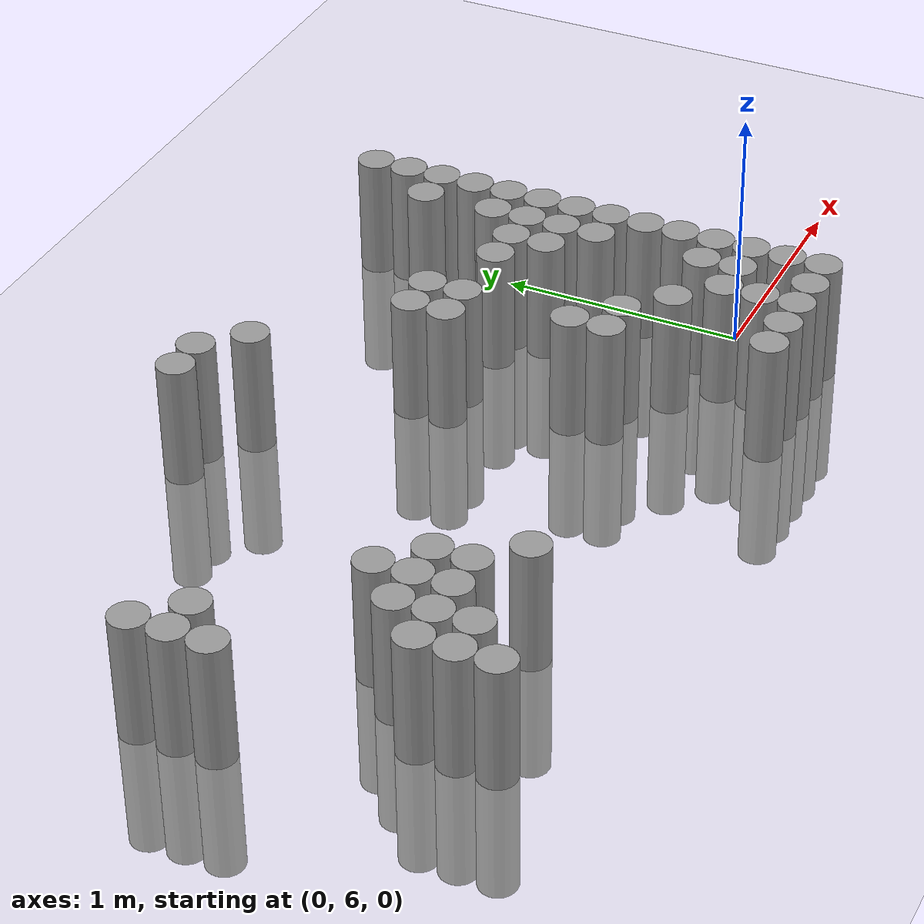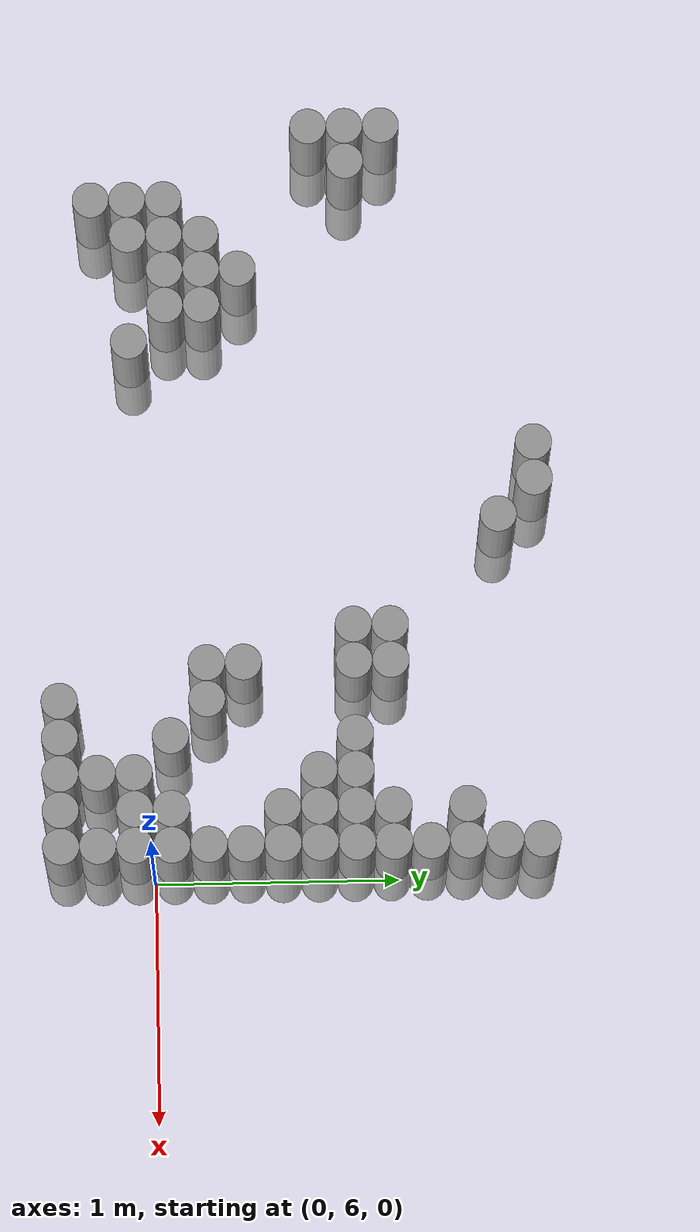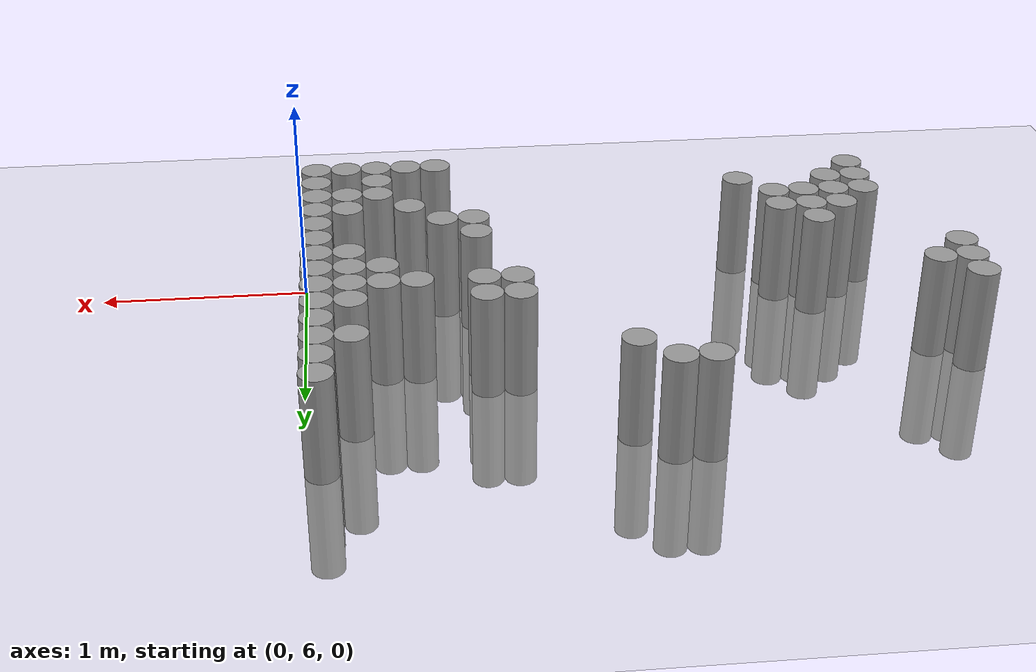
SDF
<sdf version="1.6">
 <world name="default">
  <model name="ground_plane">
   <static>1</static>
   <static>1</static>
   <link name="link">
    <collision name="collision">
     <geometry><plane><normal>0 0 1</normal><size>100 100</size></plane></geometry>
     <surface><friction><ode><mu>100</mu><mu2>50</mu2></ode></friction></surface>
    </collision>
    <visual name="visual">
     <cast_shadows>0</cast_shadows>
     <geometry><plane><normal>0 0 1</normal><size>100 100</size></plane></geometry>
     <material>
      <script><uri>file://media/materials/scripts/gazebo.material</uri><name>Gazebo/Grey</name></script>
     </material>
    </visual>
   </link>
  </model>
  <model name="unit_cylinder_166">
   <static>1</static>
   <pose>-3.075000 6.675000 0.000000 0.000000 0.000000 0.000000</pose>
   <link name="link">
    <inertial>
     <mass>1</mass>
     <inertia><ixx>0.145833</ixx><ixy>0</ixy><ixz>0</ixz><iyy>0.145833</iyy><iyz>0</iyz><izz>0.125</izz></inertia>
    </inertial>
    <collision name="collision">
     <geometry><cylinder><radius>0.075000</radius><length>1</length></cylinder></geometry>
    </collision>
    <visual name="visual">
     <geometry><cylinder><radius>0.075000</radius><length>1</length></cylinder></geometry>
     <material>
      <script><name>Gazebo/Grey</name><uri>file://media/materials/scripts/gazebo.material</uri></script>
     </material>
    </visual>
   </link>
  </model>
  <model name="unit_cylinder_167">
   <static>1</static>
   <pose>-3.075000 6.825000 0.000000 0.000000 0.000000 0.000000</pose>
   <link name="link">
    <inertial>
     <mass>1</mass>
     <inertia><ixx>0.145833</ixx><ixy>0</ixy><ixz>0</ixz><iyy>0.145833</iyy><iyz>0</iyz><izz>0.125</izz></inertia>
    </inertial>
    <collision name="collision">
     <geometry><cylinder><radius>0.075000</radius><length>1</length></cylinder></geometry>
    </collision>
    <visual name="visual">
     <geometry><cylinder><radius>0.075000</radius><length>1</length></cylinder></geometry>
     <material>
      <script><name>Gazebo/Grey</name><uri>file://media/materials/scripts/gazebo.material</uri></script>
     </material>
    </visual>
   </link>
  </model>
  <model name="unit_cylinder_168">
   <static>1</static>
   <pose>-3.075000 6.975000 0.000000 0.000000 0.000000 0.000000</pose>
   <link name="link">
    <inertial>
     <mass>1</mass>
     <inertia><ixx>0.145833</ixx><ixy>0</ixy><ixz>0</ixz><iyy>0.145833</iyy><iyz>0</iyz><izz>0.125</izz></inertia>
    </inertial>
    <collision name="collision">
     <geometry><cylinder><radius>0.075000</radius><length>1</length></cylinder></geometry>
    </collision>
    <visual name="visual">
     <geometry><cylinder><radius>0.075000</radius><length>1</length></cylinder></geometry>
     <material>
      <script><name>Gazebo/Grey</name><uri>file://media/materials/scripts/gazebo.material</uri></script>
     </material>
    </visual>
   </link>
  </model>
  <model name="unit_cylinder_169">
   <static>1</static>
   <pose>-2.925000 6.825000 0.000000 0.000000 0.000000 0.000000</pose>
   <link name="link">
    <inertial>
     <mass>1</mass>
     <inertia><ixx>0.145833</ixx><ixy>0</ixy><ixz>0</ixz><iyy>0.145833</iyy><iyz>0</iyz><izz>0.125</izz></inertia>
    </inertial>
    <collision name="collision">
     <geometry><cylinder><radius>0.075000</radius><length>1</length></cylinder></geometry>
    </collision>
    <visual name="visual">
     <geometry><cylinder><radius>0.075000</radius><length>1</length></cylinder></geometry>
     <material>
      <script><name>Gazebo/Grey</name><uri>file://media/materials/scripts/gazebo.material</uri></script>
     </material>
    </visual>
   </link>
  </model>
  <model name="unit_cylinder_170">
   <static>1</static>
   <pose>-2.775000 5.775000 0.000000 0.000000 0.000000 0.000000</pose>
   <link name="link">
    <inertial>
     <mass>1</mass>
     <inertia><ixx>0.145833</ixx><ixy>0</ixy><ixz>0</ixz><iyy>0.145833</iyy><iyz>0</iyz><izz>0.125</izz></inertia>
    </inertial>
    <collision name="collision">
     <geometry><cylinder><radius>0.075000</radius><length>1</length></cylinder></geometry>
    </collision>
    <visual name="visual">
     <geometry><cylinder><radius>0.075000</radius><length>1</length></cylinder></geometry>
     <material>
      <script><name>Gazebo/Grey</name><uri>file://media/materials/scripts/gazebo.material</uri></script>
     </material>
    </visual>
   </link>
  </model>
  <model name="unit_cylinder_171">
   <static>1</static>
   <pose>-2.775000 5.925000 0.000000 0.000000 0.000000 0.000000</pose>
   <link name="link">
    <inertial>
     <mass>1</mass>
     <inertia><ixx>0.145833</ixx><ixy>0</ixy><ixz>0</ixz><iyy>0.145833</iyy><iyz>0</iyz><izz>0.125</izz></inertia>
    </inertial>
    <collision name="collision">
     <geometry><cylinder><radius>0.075000</radius><length>1</length></cylinder></geometry>
    </collision>
    <visual name="visual">
     <geometry><cylinder><radius>0.075000</radius><length>1</length></cylinder></geometry>
     <material>
      <script><name>Gazebo/Grey</name><uri>file://media/materials/scripts/gazebo.material</uri></script>
     </material>
    </visual>
   </link>
  </model>
  <model name="unit_cylinder_172">
   <static>1</static>
   <pose>-2.775000 6.075000 0.000000 0.000000 0.000000 0.000000</pose>
   <link name="link">
    <inertial>
     <mass>1</mass>
     <inertia><ixx>0.145833</ixx><ixy>0</ixy><ixz>0</ixz><iyy>0.145833</iyy><iyz>0</iyz><izz>0.125</izz></inertia>
    </inertial>
    <collision name="collision">
     <geometry><cylinder><radius>0.075000</radius><length>1</length></cylinder></geometry>
    </collision>
    <visual name="visual">
     <geometry><cylinder><radius>0.075000</radius><length>1</length></cylinder></geometry>
     <material>
      <script><name>Gazebo/Grey</name><uri>file://media/materials/scripts/gazebo.material</uri></script>
     </material>
    </visual>
   </link>
  </model>
  <model name="unit_cylinder_173">
   <static>1</static>
   <pose>-2.625000 5.925000 0.000000 0.000000 0.000000 0.000000</pose>
   <link name="link">
    <inertial>
     <mass>1</mass>
     <inertia><ixx>0.145833</ixx><ixy>0</ixy><ixz>0</ixz><iyy>0.145833</iyy><iyz>0</iyz><izz>0.125</izz></inertia>
    </inertial>
    <collision name="collision">
     <geometry><cylinder><radius>0.075000</radius><length>1</length></cylinder></geometry>
    </collision>
    <visual name="visual">
     <geometry><cylinder><radius>0.075000</radius><length>1</length></cylinder></geometry>
     <material>
      <script><name>Gazebo/Grey</name><uri>file://media/materials/scripts/gazebo.material</uri></script>
     </material>
    </visual>
   </link>
  </model>
  <model name="unit_cylinder_174">
   <static>1</static>
   <pose>-2.625000 6.075000 0.000000 0.000000 0.000000 0.000000</pose>
   <link name="link">
    <inertial>
     <mass>1</mass>
     <inertia><ixx>0.145833</ixx><ixy>0</ixy><ixz>0</ixz><iyy>0.145833</iyy><iyz>0</iyz><izz>0.125</izz></inertia>
    </inertial>
    <collision name="collision">
     <geometry><cylinder><radius>0.075000</radius><length>1</length></cylinder></geometry>
    </collision>
    <visual name="visual">
     <geometry><cylinder><radius>0.075000</radius><length>1</length></cylinder></geometry>
     <material>
      <script><name>Gazebo/Grey</name><uri>file://media/materials/scripts/gazebo.material</uri></script>
     </material>
    </visual>
   </link>
  </model>
  <model name="unit_cylinder_175">
   <static>1</static>
   <pose>-2.625000 6.225000 0.000000 0.000000 0.000000 0.000000</pose>
   <link name="link">
    <inertial>
     <mass>1</mass>
     <inertia><ixx>0.145833</ixx><ixy>0</ixy><ixz>0</ixz><iyy>0.145833</iyy><iyz>0</iyz><izz>0.125</izz></inertia>
    </inertial>
    <collision name="collision">
     <geometry><cylinder><radius>0.075000</radius><length>1</length></cylinder></geometry>
    </collision>
    <visual name="visual">
     <geometry><cylinder><radius>0.075000</radius><length>1</length></cylinder></geometry>
     <material>
      <script><name>Gazebo/Grey</name><uri>file://media/materials/scripts/gazebo.material</uri></script>
     </material>
    </visual>
   </link>
  </model>
  <model name="unit_cylinder_176">
   <static>1</static>
   <pose>-2.475000 6.075000 0.000000 0.000000 0.000000 0.000000</pose>
   <link name="link">
    <inertial>
     <mass>1</mass>
     <inertia><ixx>0.145833</ixx><ixy>0</ixy><ixz>0</ixz><iyy>0.145833</iyy><iyz>0</iyz><izz>0.125</izz></inertia>
    </inertial>
    <collision name="collision">
     <geometry><cylinder><radius>0.075000</radius><length>1</length></cylinder></geometry>
    </collision>
    <visual name="visual">
     <geometry><cylinder><radius>0.075000</radius><length>1</length></cylinder></geometry>
     <material>
      <script><name>Gazebo/Grey</name><uri>file://media/materials/scripts/gazebo.material</uri></script>
     </material>
    </visual>
   </link>
  </model>
  <model name="unit_cylinder_177">
   <static>1</static>
   <pose>-2.475000 6.225000 0.000000 0.000000 0.000000 0.000000</pose>
   <link name="link">
    <inertial>
     <mass>1</mass>
     <inertia><ixx>0.145833</ixx><ixy>0</ixy><ixz>0</ixz><iyy>0.145833</iyy><iyz>0</iyz><izz>0.125</izz></inertia>
    </inertial>
    <collision name="collision">
     <geometry><cylinder><radius>0.075000</radius><length>1</length></cylinder></geometry>
    </collision>
    <visual name="visual">
     <geometry><cylinder><radius>0.075000</radius><length>1</length></cylinder></geometry>
     <material>
      <script><name>Gazebo/Grey</name><uri>file://media/materials/scripts/gazebo.material</uri></script>
     </material>
    </visual>
   </link>
  </model>
  <model name="unit_cylinder_178">
   <static>1</static>
   <pose>-2.475000 6.375000 0.000000 0.000000 0.000000 0.000000</pose>
   <link name="link">
    <inertial>
     <mass>1</mass>
     <inertia><ixx>0.145833</ixx><ixy>0</ixy><ixz>0</ixz><iyy>0.145833</iyy><iyz>0</iyz><izz>0.125</izz></inertia>
    </inertial>
    <collision name="collision">
     <geometry><cylinder><radius>0.075000</radius><length>1</length></cylinder></geometry>
    </collision>
    <visual name="visual">
     <geometry><cylinder><radius>0.075000</radius><length>1</length></cylinder></geometry>
     <material>
      <script><name>Gazebo/Grey</name><uri>file://media/materials/scripts/gazebo.material</uri></script>
     </material>
    </visual>
   </link>
  </model>
  <model name="unit_cylinder_179">
   <static>1</static>
   <pose>-2.325000 6.075000 0.000000 0.000000 0.000000 0.000000</pose>
   <link name="link">
    <inertial>
     <mass>1</mass>
     <inertia><ixx>0.145833</ixx><ixy>0</ixy><ixz>0</ixz><iyy>0.145833</iyy><iyz>0</iyz><izz>0.125</izz></inertia>
    </inertial>
    <collision name="collision">
     <geometry><cylinder><radius>0.075000</radius><length>1</length></cylinder></geometry>
    </collision>
    <visual name="visual">
     <geometry><cylinder><radius>0.075000</radius><length>1</length></cylinder></geometry>
     <material>
      <script><name>Gazebo/Grey</name><uri>file://media/materials/scripts/gazebo.material</uri></script>
     </material>
    </visual>
   </link>
  </model>
  <model name="unit_cylinder_180">
   <static>1</static>
   <pose>-2.325000 6.225000 0.000000 0.000000 0.000000 0.000000</pose>
   <link name="link">
    <inertial>
     <mass>1</mass>
     <inertia><ixx>0.145833</ixx><ixy>0</ixy><ixz>0</ixz><iyy>0.145833</iyy><iyz>0</iyz><izz>0.125</izz></inertia>
    </inertial>
    <collision name="collision">
     <geometry><cylinder><radius>0.075000</radius><length>1</length></cylinder></geometry>
    </collision>
    <visual name="visual">
     <geometry><cylinder><radius>0.075000</radius><length>1</length></cylinder></geometry>
     <material>
      <script><name>Gazebo/Grey</name><uri>file://media/materials/scripts/gazebo.material</uri></script>
     </material>
    </visual>
   </link>
  </model>
  <model name="unit_cylinder_182">
   <static>1</static>
   <pose>-2.175000 5.925000 0.000000 0.000000 0.000000 0.000000</pose>
   <link name="link">
    <inertial>
     <mass>1</mass>
     <inertia><ixx>0.145833</ixx><ixy>0</ixy><ixz>0</ixz><iyy>0.145833</iyy><iyz>0</iyz><izz>0.125</izz></inertia>
    </inertial>
    <collision name="collision">
     <geometry><cylinder><radius>0.075000</radius><length>1</length></cylinder></geometry>
    </collision>
    <visual name="visual">
     <geometry><cylinder><radius>0.075000</radius><length>1</length></cylinder></geometry>
     <material>
      <script><name>Gazebo/Grey</name><uri>file://media/materials/scripts/gazebo.material</uri></script>
     </material>
    </visual>
   </link>
  </model>
  <model name="unit_cylinder_192">
   <static>1</static>
   <pose>-1.725000 7.575000 0.000000 0.000000 0.000000 0.000000</pose>
   <link name="link">
    <inertial>
     <mass>1</mass>
     <inertia><ixx>0.145833</ixx><ixy>0</ixy><ixz>0</ixz><iyy>0.145833</iyy><iyz>0</iyz><izz>0.125</izz></inertia>
    </inertial>
    <collision name="collision">
     <geometry><cylinder><radius>0.075000</radius><length>1</length></cylinder></geometry>
    </collision>
    <visual name="visual">
     <geometry><cylinder><radius>0.075000</radius><length>1</length></cylinder></geometry>
     <material>
      <script><name>Gazebo/Grey</name><uri>file://media/materials/scripts/gazebo.material</uri></script>
     </material>
    </visual>
   </link>
  </model>
  <model name="unit_cylinder_200">
   <static>1</static>
   <pose>-1.575000 7.575000 0.000000 0.000000 0.000000 0.000000</pose>
   <link name="link">
    <inertial>
     <mass>1</mass>
     <inertia><ixx>0.145833</ixx><ixy>0</ixy><ixz>0</ixz><iyy>0.145833</iyy><iyz>0</iyz><izz>0.125</izz></inertia>
    </inertial>
    <collision name="collision">
     <geometry><cylinder><radius>0.075000</radius><length>1</length></cylinder></geometry>
    </collision>
    <visual name="visual">
     <geometry><cylinder><radius>0.075000</radius><length>1</length></cylinder></geometry>
     <material>
      <script><name>Gazebo/Grey</name><uri>file://media/materials/scripts/gazebo.material</uri></script>
     </material>
    </visual>
   </link>
  </model>
  <model name="unit_cylinder_205">
   <static>1</static>
   <pose>-1.425000 7.425000 0.000000 0.000000 0.000000 0.000000</pose>
   <link name="link">
    <inertial>
     <mass>1</mass>
     <inertia><ixx>0.145833</ixx><ixy>0</ixy><ixz>0</ixz><iyy>0.145833</iyy><iyz>0</iyz><izz>0.125</izz></inertia>
    </inertial>
    <collision name="collision">
     <geometry><cylinder><radius>0.075000</radius><length>1</length></cylinder></geometry>
    </collision>
    <visual name="visual">
     <geometry><cylinder><radius>0.075000</radius><length>1</length></cylinder></geometry>
     <material>
      <script><name>Gazebo/Grey</name><uri>file://media/materials/scripts/gazebo.material</uri></script>
     </material>
    </visual>
   </link>
  </model>
  <model name="unit_cylinder_212">
   <static>1</static>
   <pose>-0.975000 6.825000 0.000000 0.000000 0.000000 0.000000</pose>
   <link name="link">
    <inertial>
     <mass>1</mass>
     <inertia><ixx>0.145833</ixx><ixy>0</ixy><ixz>0</ixz><iyy>0.145833</iyy><iyz>0</iyz><izz>0.125</izz></inertia>
    </inertial>
    <collision name="collision">
     <geometry><cylinder><radius>0.075000</radius><length>1</length></cylinder></geometry>
    </collision>
    <visual name="visual">
     <geometry><cylinder><radius>0.075000</radius><length>1</length></cylinder></geometry>
     <material>
      <script><name>Gazebo/Grey</name><uri>file://media/materials/scripts/gazebo.material</uri></script>
     </material>
    </visual>
   </link>
  </model>
  <model name="unit_cylinder_213">
   <static>1</static>
   <pose>-0.975000 6.975000 0.000000 0.000000 0.000000 0.000000</pose>
   <link name="link">
    <inertial>
     <mass>1</mass>
     <inertia><ixx>0.145833</ixx><ixy>0</ixy><ixz>0</ixz><iyy>0.145833</iyy><iyz>0</iyz><izz>0.125</izz></inertia>
    </inertial>
    <collision name="collision">
     <geometry><cylinder><radius>0.075000</radius><length>1</length></cylinder></geometry>
    </collision>
    <visual name="visual">
     <geometry><cylinder><radius>0.075000</radius><length>1</length></cylinder></geometry>
     <material>
      <script><name>Gazebo/Grey</name><uri>file://media/materials/scripts/gazebo.material</uri></script>
     </material>
    </visual>
   </link>
  </model>
  <model name="unit_cylinder_215">
   <static>1</static>
   <pose>-0.825000 6.225000 0.000000 0.000000 0.000000 0.000000</pose>
   <link name="link">
    <inertial>
     <mass>1</mass>
     <inertia><ixx>0.145833</ixx><ixy>0</ixy><ixz>0</ixz><iyy>0.145833</iyy><iyz>0</iyz><izz>0.125</izz></inertia>
    </inertial>
    <collision name="collision">
     <geometry><cylinder><radius>0.075000</radius><length>1</length></cylinder></geometry>
    </collision>
    <visual name="visual">
     <geometry><cylinder><radius>0.075000</radius><length>1</length></cylinder></geometry>
     <material>
      <script><name>Gazebo/Grey</name><uri>file://media/materials/scripts/gazebo.material</uri></script>
     </material>
    </visual>
   </link>
  </model>
  <model name="unit_cylinder_216">
   <static>1</static>
   <pose>-0.825000 6.375000 0.000000 0.000000 0.000000 0.000000</pose>
   <link name="link">
    <inertial>
     <mass>1</mass>
     <inertia><ixx>0.145833</ixx><ixy>0</ixy><ixz>0</ixz><iyy>0.145833</iyy><iyz>0</iyz><izz>0.125</izz></inertia>
    </inertial>
    <collision name="collision">
     <geometry><cylinder><radius>0.075000</radius><length>1</length></cylinder></geometry>
    </collision>
    <visual name="visual">
     <geometry><cylinder><radius>0.075000</radius><length>1</length></cylinder></geometry>
     <material>
      <script><name>Gazebo/Grey</name><uri>file://media/materials/scripts/gazebo.material</uri></script>
     </material>
    </visual>
   </link>
  </model>
  <model name="unit_cylinder_217">
   <static>1</static>
   <pose>-0.825000 6.825000 0.000000 0.000000 0.000000 0.000000</pose>
   <link name="link">
    <inertial>
     <mass>1</mass>
     <inertia><ixx>0.145833</ixx><ixy>0</ixy><ixz>0</ixz><iyy>0.145833</iyy><iyz>0</iyz><izz>0.125</izz></inertia>
    </inertial>
    <collision name="collision">
     <geometry><cylinder><radius>0.075000</radius><length>1</length></cylinder></geometry>
    </collision>
    <visual name="visual">
     <geometry><cylinder><radius>0.075000</radius><length>1</length></cylinder></geometry>
     <material>
      <script><name>Gazebo/Grey</name><uri>file://media/materials/scripts/gazebo.material</uri></script>
     </material>
    </visual>
   </link>
  </model>
  <model name="unit_cylinder_218">
   <static>1</static>
   <pose>-0.825000 6.975000 0.000000 0.000000 0.000000 0.000000</pose>
   <link name="link">
    <inertial>
     <mass>1</mass>
     <inertia><ixx>0.145833</ixx><ixy>0</ixy><ixz>0</ixz><iyy>0.145833</iyy><iyz>0</iyz><izz>0.125</izz></inertia>
    </inertial>
    <collision name="collision">
     <geometry><cylinder><radius>0.075000</radius><length>1</length></cylinder></geometry>
    </collision>
    <visual name="visual">
     <geometry><cylinder><radius>0.075000</radius><length>1</length></cylinder></geometry>
     <material>
      <script><name>Gazebo/Grey</name><uri>file://media/materials/scripts/gazebo.material</uri></script>
     </material>
    </visual>
   </link>
  </model>
  <model name="unit_cylinder_222">
   <static>1</static>
   <pose>-0.675000 5.625000 0.000000 0.000000 0.000000 0.000000</pose>
   <link name="link">
    <inertial>
     <mass>1</mass>
     <inertia><ixx>0.145833</ixx><ixy>0</ixy><ixz>0</ixz><iyy>0.145833</iyy><iyz>0</iyz><izz>0.125</izz></inertia>
    </inertial>
    <collision name="collision">
     <geometry><cylinder><radius>0.075000</radius><length>1</length></cylinder></geometry>
    </collision>
    <visual name="visual">
     <geometry><cylinder><radius>0.075000</radius><length>1</length></cylinder></geometry>
     <material>
      <script><name>Gazebo/Grey</name><uri>file://media/materials/scripts/gazebo.material</uri></script>
     </material>
    </visual>
   </link>
  </model>
  <model name="unit_cylinder_223">
   <static>1</static>
   <pose>-0.675000 6.225000 0.000000 0.000000 0.000000 0.000000</pose>
   <link name="link">
    <inertial>
     <mass>1</mass>
     <inertia><ixx>0.145833</ixx><ixy>0</ixy><ixz>0</ixz><iyy>0.145833</iyy><iyz>0</iyz><izz>0.125</izz></inertia>
    </inertial>
    <collision name="collision">
     <geometry><cylinder><radius>0.075000</radius><length>1</length></cylinder></geometry>
    </collision>
    <visual name="visual">
     <geometry><cylinder><radius>0.075000</radius><length>1</length></cylinder></geometry>
     <material>
      <script><name>Gazebo/Grey</name><uri>file://media/materials/scripts/gazebo.material</uri></script>
     </material>
    </visual>
   </link>
  </model>
  <model name="unit_cylinder_228">
   <static>1</static>
   <pose>-0.525000 5.625000 0.000000 0.000000 0.000000 0.000000</pose>
   <link name="link">
    <inertial>
     <mass>1</mass>
     <inertia><ixx>0.145833</ixx><ixy>0</ixy><ixz>0</ixz><iyy>0.145833</iyy><iyz>0</iyz><izz>0.125</izz></inertia>
    </inertial>
    <collision name="collision">
     <geometry><cylinder><radius>0.075000</radius><length>1</length></cylinder></geometry>
    </collision>
    <visual name="visual">
     <geometry><cylinder><radius>0.075000</radius><length>1</length></cylinder></geometry>
     <material>
      <script><name>Gazebo/Grey</name><uri>file://media/materials/scripts/gazebo.material</uri></script>
     </material>
    </visual>
   </link>
  </model>
  <model name="unit_cylinder_229">
   <static>1</static>
   <pose>-0.525000 6.075000 0.000000 0.000000 0.000000 0.000000</pose>
   <link name="link">
    <inertial>
     <mass>1</mass>
     <inertia><ixx>0.145833</ixx><ixy>0</ixy><ixz>0</ixz><iyy>0.145833</iyy><iyz>0</iyz><izz>0.125</izz></inertia>
    </inertial>
    <collision name="collision">
     <geometry><cylinder><radius>0.075000</radius><length>1</length></cylinder></geometry>
    </collision>
    <visual name="visual">
     <geometry><cylinder><radius>0.075000</radius><length>1</length></cylinder></geometry>
     <material>
      <script><name>Gazebo/Grey</name><uri>file://media/materials/scripts/gazebo.material</uri></script>
     </material>
    </visual>
   </link>
  </model>
  <model name="unit_cylinder_230">
   <static>1</static>
   <pose>-0.525000 6.825000 0.000000 0.000000 0.000000 0.000000</pose>
   <link name="link">
    <inertial>
     <mass>1</mass>
     <inertia><ixx>0.145833</ixx><ixy>0</ixy><ixz>0</ixz><iyy>0.145833</iyy><iyz>0</iyz><izz>0.125</izz></inertia>
    </inertial>
    <collision name="collision">
     <geometry><cylinder><radius>0.075000</radius><length>1</length></cylinder></geometry>
    </collision>
    <visual name="visual">
     <geometry><cylinder><radius>0.075000</radius><length>1</length></cylinder></geometry>
     <material>
      <script><name>Gazebo/Grey</name><uri>file://media/materials/scripts/gazebo.material</uri></script>
     </material>
    </visual>
   </link>
  </model>
  <model name="unit_cylinder_234">
   <static>1</static>
   <pose>-0.375000 5.625000 0.000000 0.000000 0.000000 0.000000</pose>
   <link name="link">
    <inertial>
     <mass>1</mass>
     <inertia><ixx>0.145833</ixx><ixy>0</ixy><ixz>0</ixz><iyy>0.145833</iyy><iyz>0</iyz><izz>0.125</izz></inertia>
    </inertial>
    <collision name="collision">
     <geometry><cylinder><radius>0.075000</radius><length>1</length></cylinder></geometry>
    </collision>
    <visual name="visual">
     <geometry><cylinder><radius>0.075000</radius><length>1</length></cylinder></geometry>
     <material>
      <script><name>Gazebo/Grey</name><uri>file://media/materials/scripts/gazebo.material</uri></script>
     </material>
    </visual>
   </link>
  </model>
  <model name="unit_cylinder_235">
   <static>1</static>
   <pose>-0.375000 5.775000 0.000000 0.000000 0.000000 0.000000</pose>
   <link name="link">
    <inertial>
     <mass>1</mass>
     <inertia><ixx>0.145833</ixx><ixy>0</ixy><ixz>0</ixz><iyy>0.145833</iyy><iyz>0</iyz><izz>0.125</izz></inertia>
    </inertial>
    <collision name="collision">
     <geometry><cylinder><radius>0.075000</radius><length>1</length></cylinder></geometry>
    </collision>
    <visual name="visual">
     <geometry><cylinder><radius>0.075000</radius><length>1</length></cylinder></geometry>
     <material>
      <script><name>Gazebo/Grey</name><uri>file://media/materials/scripts/gazebo.material</uri></script>
     </material>
    </visual>
   </link>
  </model>
  <model name="unit_cylinder_236">
   <static>1</static>
   <pose>-0.375000 5.925000 0.000000 0.000000 0.000000 0.000000</pose>
   <link name="link">
    <inertial>
     <mass>1</mass>
     <inertia><ixx>0.145833</ixx><ixy>0</ixy><ixz>0</ixz><iyy>0.145833</iyy><iyz>0</iyz><izz>0.125</izz></inertia>
    </inertial>
    <collision name="collision">
     <geometry><cylinder><radius>0.075000</radius><length>1</length></cylinder></geometry>
    </collision>
    <visual name="visual">
     <geometry><cylinder><radius>0.075000</radius><length>1</length></cylinder></geometry>
     <material>
      <script><name>Gazebo/Grey</name><uri>file://media/materials/scripts/gazebo.material</uri></script>
     </material>
    </visual>
   </link>
  </model>
  <model name="unit_cylinder_237">
   <static>1</static>
   <pose>-0.375000 6.675000 0.000000 0.000000 0.000000 0.000000</pose>
   <link name="link">
    <inertial>
     <mass>1</mass>
     <inertia><ixx>0.145833</ixx><ixy>0</ixy><ixz>0</ixz><iyy>0.145833</iyy><iyz>0</iyz><izz>0.125</izz></inertia>
    </inertial>
    <collision name="collision">
     <geometry><cylinder><radius>0.075000</radius><length>1</length></cylinder></geometry>
    </collision>
    <visual name="visual">
     <geometry><cylinder><radius>0.075000</radius><length>1</length></cylinder></geometry>
     <material>
      <script><name>Gazebo/Grey</name><uri>file://media/materials/scripts/gazebo.material</uri></script>
     </material>
    </visual>
   </link>
  </model>
  <model name="unit_cylinder_238">
   <static>1</static>
   <pose>-0.375000 6.825000 0.000000 0.000000 0.000000 0.000000</pose>
   <link name="link">
    <inertial>
     <mass>1</mass>
     <inertia><ixx>0.145833</ixx><ixy>0</ixy><ixz>0</ixz><iyy>0.145833</iyy><iyz>0</iyz><izz>0.125</izz></inertia>
    </inertial>
    <collision name="collision">
     <geometry><cylinder><radius>0.075000</radius><length>1</length></cylinder></geometry>
    </collision>
    <visual name="visual">
     <geometry><cylinder><radius>0.075000</radius><length>1</length></cylinder></geometry>
     <material>
      <script><name>Gazebo/Grey</name><uri>file://media/materials/scripts/gazebo.material</uri></script>
     </material>
    </visual>
   </link>
  </model>
  <model name="unit_cylinder_245">
   <static>1</static>
   <pose>-0.225000 5.625000 0.000000 0.000000 0.000000 0.000000</pose>
   <link name="link">
    <inertial>
     <mass>1</mass>
     <inertia><ixx>0.145833</ixx><ixy>0</ixy><ixz>0</ixz><iyy>0.145833</iyy><iyz>0</iyz><izz>0.125</izz></inertia>
    </inertial>
    <collision name="collision">
     <geometry><cylinder><radius>0.075000</radius><length>1</length></cylinder></geometry>
    </collision>
    <visual name="visual">
     <geometry><cylinder><radius>0.075000</radius><length>1</length></cylinder></geometry>
     <material>
      <script><name>Gazebo/Grey</name><uri>file://media/materials/scripts/gazebo.material</uri></script>
     </material>
    </visual>
   </link>
  </model>
  <model name="unit_cylinder_246">
   <static>1</static>
   <pose>-0.225000 5.925000 0.000000 0.000000 0.000000 0.000000</pose>
   <link name="link">
    <inertial>
     <mass>1</mass>
     <inertia><ixx>0.145833</ixx><ixy>0</ixy><ixz>0</ixz><iyy>0.145833</iyy><iyz>0</iyz><izz>0.125</izz></inertia>
    </inertial>
    <collision name="collision">
     <geometry><cylinder><radius>0.075000</radius><length>1</length></cylinder></geometry>
    </collision>
    <visual name="visual">
     <geometry><cylinder><radius>0.075000</radius><length>1</length></cylinder></geometry>
     <material>
      <script><name>Gazebo/Grey</name><uri>file://media/materials/scripts/gazebo.material</uri></script>
     </material>
    </visual>
   </link>
  </model>
  <model name="unit_cylinder_247">
   <static>1</static>
   <pose>-0.225000 6.075000 0.000000 0.000000 0.000000 0.000000</pose>
   <link name="link">
    <inertial>
     <mass>1</mass>
     <inertia><ixx>0.145833</ixx><ixy>0</ixy><ixz>0</ixz><iyy>0.145833</iyy><iyz>0</iyz><izz>0.125</izz></inertia>
    </inertial>
    <collision name="collision">
     <geometry><cylinder><radius>0.075000</radius><length>1</length></cylinder></geometry>
    </collision>
    <visual name="visual">
     <geometry><cylinder><radius>0.075000</radius><length>1</length></cylinder></geometry>
     <material>
      <script><name>Gazebo/Grey</name><uri>file://media/materials/scripts/gazebo.material</uri></script>
     </material>
    </visual>
   </link>
  </model>
  <model name="unit_cylinder_248">
   <static>1</static>
   <pose>-0.225000 6.525000 0.000000 0.000000 0.000000 0.000000</pose>
   <link name="link">
    <inertial>
     <mass>1</mass>
     <inertia><ixx>0.145833</ixx><ixy>0</ixy><ixz>0</ixz><iyy>0.145833</iyy><iyz>0</iyz><izz>0.125</izz></inertia>
    </inertial>
    <collision name="collision">
     <geometry><cylinder><radius>0.075000</radius><length>1</length></cylinder></geometry>
    </collision>
    <visual name="visual">
     <geometry><cylinder><radius>0.075000</radius><length>1</length></cylinder></geometry>
     <material>
      <script><name>Gazebo/Grey</name><uri>file://media/materials/scripts/gazebo.material</uri></script>
     </material>
    </visual>
   </link>
  </model>
  <model name="unit_cylinder_249">
   <static>1</static>
   <pose>-0.225000 6.675000 0.000000 0.000000 0.000000 0.000000</pose>
   <link name="link">
    <inertial>
     <mass>1</mass>
     <inertia><ixx>0.145833</ixx><ixy>0</ixy><ixz>0</ixz><iyy>0.145833</iyy><iyz>0</iyz><izz>0.125</izz></inertia>
    </inertial>
    <collision name="collision">
     <geometry><cylinder><radius>0.075000</radius><length>1</length></cylinder></geometry>
    </collision>
    <visual name="visual">
     <geometry><cylinder><radius>0.075000</radius><length>1</length></cylinder></geometry>
     <material>
      <script><name>Gazebo/Grey</name><uri>file://media/materials/scripts/gazebo.material</uri></script>
     </material>
    </visual>
   </link>
  </model>
  <model name="unit_cylinder_250">
   <static>1</static>
   <pose>-0.225000 6.825000 0.000000 0.000000 0.000000 0.000000</pose>
   <link name="link">
    <inertial>
     <mass>1</mass>
     <inertia><ixx>0.145833</ixx><ixy>0</ixy><ixz>0</ixz><iyy>0.145833</iyy><iyz>0</iyz><izz>0.125</izz></inertia>
    </inertial>
    <collision name="collision">
     <geometry><cylinder><radius>0.075000</radius><length>1</length></cylinder></geometry>
    </collision>
    <visual name="visual">
     <geometry><cylinder><radius>0.075000</radius><length>1</length></cylinder></geometry>
     <material>
      <script><name>Gazebo/Grey</name><uri>file://media/materials/scripts/gazebo.material</uri></script>
     </material>
    </visual>
   </link>
  </model>
  <model name="unit_cylinder_251">
   <static>1</static>
   <pose>-0.225000 6.975000 0.000000 0.000000 0.000000 0.000000</pose>
   <link name="link">
    <inertial>
     <mass>1</mass>
     <inertia><ixx>0.145833</ixx><ixy>0</ixy><ixz>0</ixz><iyy>0.145833</iyy><iyz>0</iyz><izz>0.125</izz></inertia>
    </inertial>
    <collision name="collision">
     <geometry><cylinder><radius>0.075000</radius><length>1</length></cylinder></geometry>
    </collision>
    <visual name="visual">
     <geometry><cylinder><radius>0.075000</radius><length>1</length></cylinder></geometry>
     <material>
      <script><name>Gazebo/Grey</name><uri>file://media/materials/scripts/gazebo.material</uri></script>
     </material>
    </visual>
   </link>
  </model>
  <model name="unit_cylinder_252">
   <static>1</static>
   <pose>-0.225000 7.275000 0.000000 0.000000 0.000000 0.000000</pose>
   <link name="link">
    <inertial>
     <mass>1</mass>
     <inertia><ixx>0.145833</ixx><ixy>0</ixy><ixz>0</ixz><iyy>0.145833</iyy><iyz>0</iyz><izz>0.125</izz></inertia>
    </inertial>
    <collision name="collision">
     <geometry><cylinder><radius>0.075000</radius><length>1</length></cylinder></geometry>
    </collision>
    <visual name="visual">
     <geometry><cylinder><radius>0.075000</radius><length>1</length></cylinder></geometry>
     <material>
      <script><name>Gazebo/Grey</name><uri>file://media/materials/scripts/gazebo.material</uri></script>
     </material>
    </visual>
   </link>
  </model>
  <model name="unit_cylinder_262">
   <static>1</static>
   <pose>-0.075000 5.625000 0.000000 0.000000 0.000000 0.000000</pose>
   <link name="link">
    <inertial>
     <mass>1</mass>
     <inertia><ixx>0.145833</ixx><ixy>0</ixy><ixz>0</ixz><iyy>0.145833</iyy><iyz>0</iyz><izz>0.125</izz></inertia>
    </inertial>
    <collision name="collision">
     <geometry><cylinder><radius>0.075000</radius><length>1</length></cylinder></geometry>
    </collision>
    <visual name="visual">
     <geometry><cylinder><radius>0.075000</radius><length>1</length></cylinder></geometry>
     <material>
      <script><name>Gazebo/Grey</name><uri>file://media/materials/scripts/gazebo.material</uri></script>
     </material>
    </visual>
   </link>
  </model>
  <model name="unit_cylinder_263">
   <static>1</static>
   <pose>-0.075000 5.775000 0.000000 0.000000 0.000000 0.000000</pose>
   <link name="link">
    <inertial>
     <mass>1</mass>
     <inertia><ixx>0.145833</ixx><ixy>0</ixy><ixz>0</ixz><iyy>0.145833</iyy><iyz>0</iyz><izz>0.125</izz></inertia>
    </inertial>
    <collision name="collision">
     <geometry><cylinder><radius>0.075000</radius><length>1</length></cylinder></geometry>
    </collision>
    <visual name="visual">
     <geometry><cylinder><radius>0.075000</radius><length>1</length></cylinder></geometry>
     <material>
      <script><name>Gazebo/Grey</name><uri>file://media/materials/scripts/gazebo.material</uri></script>
     </material>
    </visual>
   </link>
  </model>
  <model name="unit_cylinder_264">
   <static>1</static>
   <pose>-0.075000 5.925000 0.000000 0.000000 0.000000 0.000000</pose>
   <link name="link">
    <inertial>
     <mass>1</mass>
     <inertia><ixx>0.145833</ixx><ixy>0</ixy><ixz>0</ixz><iyy>0.145833</iyy><iyz>0</iyz><izz>0.125</izz></inertia>
    </inertial>
    <collision name="collision">
     <geometry><cylinder><radius>0.075000</radius><length>1</length></cylinder></geometry>
    </collision>
    <visual name="visual">
     <geometry><cylinder><radius>0.075000</radius><length>1</length></cylinder></geometry>
     <material>
      <script><name>Gazebo/Grey</name><uri>file://media/materials/scripts/gazebo.material</uri></script>
     </material>
    </visual>
   </link>
  </model>
  <model name="unit_cylinder_265">
   <static>1</static>
   <pose>-0.075000 6.075000 0.000000 0.000000 0.000000 0.000000</pose>
   <link name="link">
    <inertial>
     <mass>1</mass>
     <inertia><ixx>0.145833</ixx><ixy>0</ixy><ixz>0</ixz><iyy>0.145833</iyy><iyz>0</iyz><izz>0.125</izz></inertia>
    </inertial>
    <collision name="collision">
     <geometry><cylinder><radius>0.075000</radius><length>1</length></cylinder></geometry>
    </collision>
    <visual name="visual">
     <geometry><cylinder><radius>0.075000</radius><length>1</length></cylinder></geometry>
     <material>
      <script><name>Gazebo/Grey</name><uri>file://media/materials/scripts/gazebo.material</uri></script>
     </material>
    </visual>
   </link>
  </model>
  <model name="unit_cylinder_266">
   <static>1</static>
   <pose>-0.075000 6.225000 0.000000 0.000000 0.000000 0.000000</pose>
   <link name="link">
    <inertial>
     <mass>1</mass>
     <inertia><ixx>0.145833</ixx><ixy>0</ixy><ixz>0</ixz><iyy>0.145833</iyy><iyz>0</iyz><izz>0.125</izz></inertia>
    </inertial>
    <collision name="collision">
     <geometry><cylinder><radius>0.075000</radius><length>1</length></cylinder></geometry>
    </collision>
    <visual name="visual">
     <geometry><cylinder><radius>0.075000</radius><length>1</length></cylinder></geometry>
     <material>
      <script><name>Gazebo/Grey</name><uri>file://media/materials/scripts/gazebo.material</uri></script>
     </material>
    </visual>
   </link>
  </model>
  <model name="unit_cylinder_267">
   <static>1</static>
   <pose>-0.075000 6.375000 0.000000 0.000000 0.000000 0.000000</pose>
   <link name="link">
    <inertial>
     <mass>1</mass>
     <inertia><ixx>0.145833</ixx><ixy>0</ixy><ixz>0</ixz><iyy>0.145833</iyy><iyz>0</iyz><izz>0.125</izz></inertia>
    </inertial>
    <collision name="collision">
     <geometry><cylinder><radius>0.075000</radius><length>1</length></cylinder></geometry>
    </collision>
    <visual name="visual">
     <geometry><cylinder><radius>0.075000</radius><length>1</length></cylinder></geometry>
     <material>
      <script><name>Gazebo/Grey</name><uri>file://media/materials/scripts/gazebo.material</uri></script>
     </material>
    </visual>
   </link>
  </model>
  <model name="unit_cylinder_268">
   <static>1</static>
   <pose>-0.075000 6.525000 0.000000 0.000000 0.000000 0.000000</pose>
   <link name="link">
    <inertial>
     <mass>1</mass>
     <inertia><ixx>0.145833</ixx><ixy>0</ixy><ixz>0</ixz><iyy>0.145833</iyy><iyz>0</iyz><izz>0.125</izz></inertia>
    </inertial>
    <collision name="collision">
     <geometry><cylinder><radius>0.075000</radius><length>1</length></cylinder></geometry>
    </collision>
    <visual name="visual">
     <geometry><cylinder><radius>0.075000</radius><length>1</length></cylinder></geometry>
     <material>
      <script><name>Gazebo/Grey</name><uri>file://media/materials/scripts/gazebo.material</uri></script>
     </material>
    </visual>
   </link>
  </model>
  <model name="unit_cylinder_269">
   <static>1</static>
   <pose>-0.075000 6.675000 0.000000 0.000000 0.000000 0.000000</pose>
   <link name="link">
    <inertial>
     <mass>1</mass>
     <inertia><ixx>0.145833</ixx><ixy>0</ixy><ixz>0</ixz><iyy>0.145833</iyy><iyz>0</iyz><izz>0.125</izz></inertia>
    </inertial>
    <collision name="collision">
     <geometry><cylinder><radius>0.075000</radius><length>1</length></cylinder></geometry>
    </collision>
    <visual name="visual">
     <geometry><cylinder><radius>0.075000</radius><length>1</length></cylinder></geometry>
     <material>
      <script><name>Gazebo/Grey</name><uri>file://media/materials/scripts/gazebo.material</uri></script>
     </material>
    </visual>
   </link>
  </model>
  <model name="unit_cylinder_270">
   <static>1</static>
   <pose>-0.075000 6.825000 0.000000 0.000000 0.000000 0.000000</pose>
   <link name="link">
    <inertial>
     <mass>1</mass>
     <inertia><ixx>0.145833</ixx><ixy>0</ixy><ixz>0</ixz><iyy>0.145833</iyy><iyz>0</iyz><izz>0.125</izz></inertia>
    </inertial>
    <collision name="collision">
     <geometry><cylinder><radius>0.075000</radius><length>1</length></cylinder></geometry>
    </collision>
    <visual name="visual">
     <geometry><cylinder><radius>0.075000</radius><length>1</length></cylinder></geometry>
     <material>
      <script><name>Gazebo/Grey</name><uri>file://media/materials/scripts/gazebo.material</uri></script>
     </material>
    </visual>
   </link>
  </model>
  <model name="unit_cylinder_271">
   <static>1</static>
   <pose>-0.075000 6.975000 0.000000 0.000000 0.000000 0.000000</pose>
   <link name="link">
    <inertial>
     <mass>1</mass>
     <inertia><ixx>0.145833</ixx><ixy>0</ixy><ixz>0</ixz><iyy>0.145833</iyy><iyz>0</iyz><izz>0.125</izz></inertia>
    </inertial>
    <collision name="collision">
     <geometry><cylinder><radius>0.075000</radius><length>1</length></cylinder></geometry>
    </collision>
    <visual name="visual">
     <geometry><cylinder><radius>0.075000</radius><length>1</length></cylinder></geometry>
     <material>
      <script><name>Gazebo/Grey</name><uri>file://media/materials/scripts/gazebo.material</uri></script>
     </material>
    </visual>
   </link>
  </model>
  <model name="unit_cylinder_272">
   <static>1</static>
   <pose>-0.075000 7.125000 0.000000 0.000000 0.000000 0.000000</pose>
   <link name="link">
    <inertial>
     <mass>1</mass>
     <inertia><ixx>0.145833</ixx><ixy>0</ixy><ixz>0</ixz><iyy>0.145833</iyy><iyz>0</iyz><izz>0.125</izz></inertia>
    </inertial>
    <collision name="collision">
     <geometry><cylinder><radius>0.075000</radius><length>1</length></cylinder></geometry>
    </collision>
    <visual name="visual">
     <geometry><cylinder><radius>0.075000</radius><length>1</length></cylinder></geometry>
     <material>
      <script><name>Gazebo/Grey</name><uri>file://media/materials/scripts/gazebo.material</uri></script>
     </material>
    </visual>
   </link>
  </model>
  <model name="unit_cylinder_273">
   <static>1</static>
   <pose>-0.075000 7.275000 0.000000 0.000000 0.000000 0.000000</pose>
   <link name="link">
    <inertial>
     <mass>1</mass>
     <inertia><ixx>0.145833</ixx><ixy>0</ixy><ixz>0</ixz><iyy>0.145833</iyy><iyz>0</iyz><izz>0.125</izz></inertia>
    </inertial>
    <collision name="collision">
     <geometry><cylinder><radius>0.075000</radius><length>1</length></cylinder></geometry>
    </collision>
    <visual name="visual">
     <geometry><cylinder><radius>0.075000</radius><length>1</length></cylinder></geometry>
     <material>
      <script><name>Gazebo/Grey</name><uri>file://media/materials/scripts/gazebo.material</uri></script>
     </material>
    </visual>
   </link>
  </model>
  <model name="unit_cylinder_274">
   <static>1</static>
   <pose>-0.075000 7.425000 0.000000 0.000000 0.000000 0.000000</pose>
   <link name="link">
    <inertial>
     <mass>1</mass>
     <inertia><ixx>0.145833</ixx><ixy>0</ixy><ixz>0</ixz><iyy>0.145833</iyy><iyz>0</iyz><izz>0.125</izz></inertia>
    </inertial>
    <collision name="collision">
     <geometry><cylinder><radius>0.075000</radius><length>1</length></cylinder></geometry>
    </collision>
    <visual name="visual">
     <geometry><cylinder><radius>0.075000</radius><length>1</length></cylinder></geometry>
     <material>
      <script><name>Gazebo/Grey</name><uri>file://media/materials/scripts/gazebo.material</uri></script>
     </material>
    </visual>
   </link>
  </model>
  <model name="unit_cylinder_275">
   <static>1</static>
   <pose>-0.075000 7.575000 0.000000 0.000000 0.000000 0.000000</pose>
   <link name="link">
    <inertial>
     <mass>1</mass>
     <inertia><ixx>0.145833</ixx><ixy>0</ixy><ixz>0</ixz><iyy>0.145833</iyy><iyz>0</iyz><izz>0.125</izz></inertia>
    </inertial>
    <collision name="collision">
     <geometry><cylinder><radius>0.075000</radius><length>1</length></cylinder></geometry>
    </collision>
    <visual name="visual">
     <geometry><cylinder><radius>0.075000</radius><length>1</length></cylinder></geometry>
     <material>
      <script><name>Gazebo/Grey</name><uri>file://media/materials/scripts/gazebo.material</uri></script>
     </material>
    </visual>
   </link>
  </model>
 </world>
</sdf>
